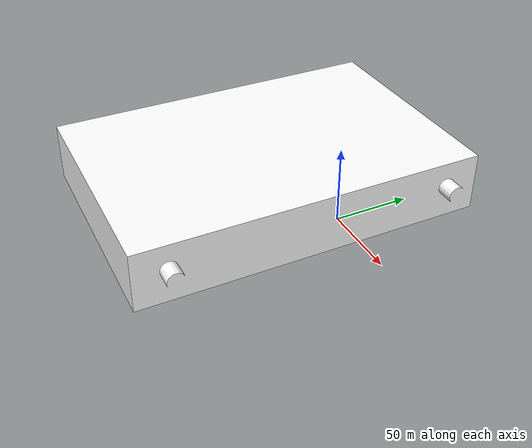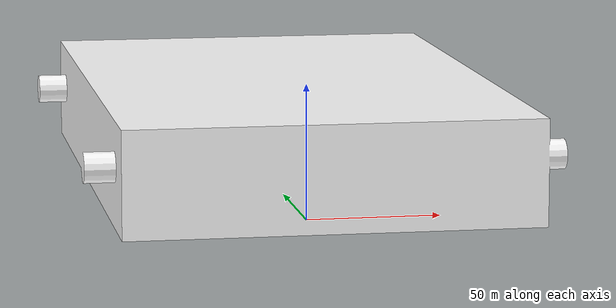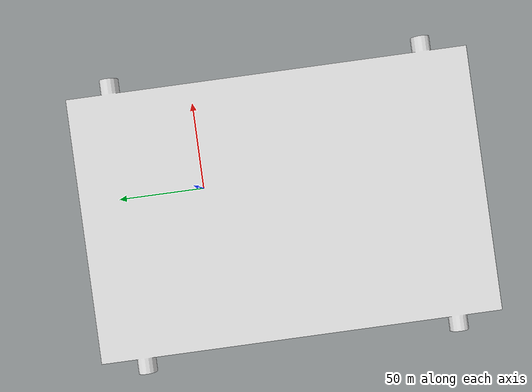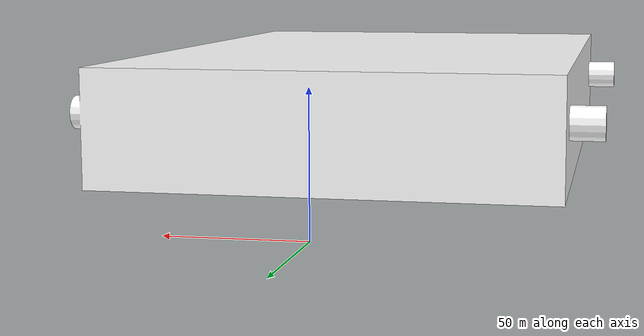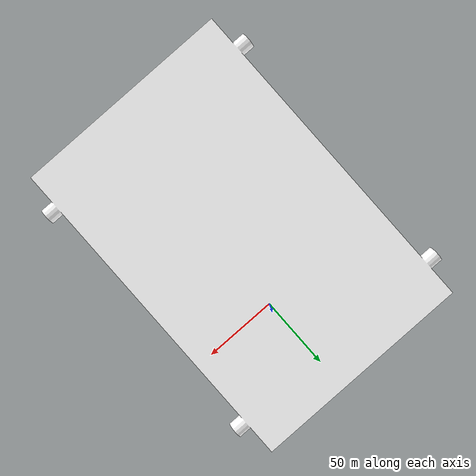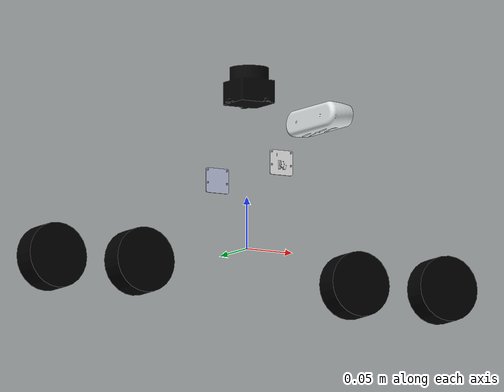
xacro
<?xml version="1.0"?>

<robot name="vehiculo_urdf_v2" xmlns:xacro="http://www.ros.org/wiki/xacro">
    <xacro:arg name="ground_truth_on" default="true" />

    <xacro:include filename="$(find vehicle_description)/urdf/vehiculo_urdf_v2.urdf" />
    <xacro:include filename="$(find vehicle_description)/urdf/vehiculo_macros.xacro" />
    <xacro:include filename="$(find vehicle_description)/urdf/vehiculo_gazebo.xacro" />
    <xacro:vehicle_sensors ground_truth_on="$(arg ground_truth_on)" />

    <!-- Degree-to-radian conversions -->
    <xacro:property name="degrees_45" value="0.785398163" />
    <xacro:property name="degrees_90" value="1.57079633" />

    <!-- chassis_length is measured along the x axis, chassis_width
       along the y axis, and
    chassis_height along the z axis. -->
    <xacro:property name="chassis_length" value="0.23208" />
    <xacro:property name="chassis_width" value="0.17" />
    <xacro:property name="chassis_height" value="0.17925" />
    <xacro:property name="chassis_mass" value="0.65815" />

    <link name="base_footprint"> </link>

    <gazebo reference="base_footprint">
        <material>Gazebo/Grey</material>
    </gazebo>

    <joint name="base_footprint_to_base_link" type="fixed">
        <parent link="base_footprint" />
        <child link="base_link" />
    </joint>

    <!-- Wheels -->
    <xacro:front_wheel lr_prefix="left" fr_prefix="front"
        lr_reflect="1" fr_reflect="1" />
    <xacro:front_wheel lr_prefix="right" fr_prefix="front"
        lr_reflect="-1" fr_reflect="1" />
    <xacro:rear_wheel lr_prefix="left" fr_prefix="rear"
        lr_reflect="1" fr_reflect="-1" />
    <xacro:rear_wheel lr_prefix="right" fr_prefix="rear"
        lr_reflect="-1" fr_reflect="-1" />

    <gazebo>
        <plugin name="gazebo_ros_control" filename="libgazebo_ros_control.so">
            <robotNamespace>/</robotNamespace>
        </plugin>
    </gazebo>

</robot>

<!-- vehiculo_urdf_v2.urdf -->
<robot
  name="vehiculo_urdf_v2">
  <link
    name="base_link">
    <inertial>
      <origin
        xyz="-0.0012936 -0.0013074 0.052855"
        rpy="0 0 0" />
      <mass
        value="0.65815" />
      <inertia
        ixx="0.0006861"
        ixy="-2.0593E-06"
        ixz="5.8448E-06"
        iyy="0.0016384"
        iyz="1.37E-08"
        izz="0.0021405" />
    </inertial>
    <visual>
      <origin
        xyz="0 0 0"
        rpy="0 0 0" />
      <geometry>
        <mesh
          filename="package://vehicle_description/meshes/base_link.STL" />
      </geometry>
      <material
        name="">
        <color
          rgba="1 1 1 1" />
      </material>
    </visual>
    <collision>
      <origin
        xyz="0 0 0"
        rpy="0 0 0" />
      <geometry>
        <mesh
          filename="package://vehicle_description/meshes/base_link.STL" />
      </geometry>
    </collision>
  </link>

  <link
    name="link_lidar">
    <inertial>
      <origin
        xyz="-1.3261E-05 0 -0.01853"
        rpy="0 0 0" />
      <mass
        value="0.064116" />
      <inertia
        ixx="1.3258E-05"
        ixy="4.4109E-22"
        ixz="-1.2789E-08"
        iyy="1.3212E-05"
        iyz="-2.5949E-22"
        izz="1.3761E-05" />
    </inertial>
    <visual>
      <origin
        xyz="0 0 0"
        rpy="0 0 0" />
      <geometry>
        <mesh
          filename="package://vehicle_description/meshes/link_lidar.STL" />
      </geometry>
      <material
        name="">
        <color
          rgba="0.019608 0.019608 0.019608 1" />
      </material>
    </visual>
    <collision>
      <origin
        xyz="0 0 0"
        rpy="0 0 0" />
      <geometry>
        <mesh
          filename="package://vehicle_description/meshes/link_lidar.STL" />
      </geometry>
    </collision>
  </link>

  <link
    name="link_realsense">
    <inertial>
      <origin
        xyz="-0.01273 -2.7327E-07 -4.8132E-05"
        rpy="0 0 0" />
      <mass
        value="0.048199" />
      <inertia
        ixx="2.7389E-05"
        ixy="-4.2604E-07"
        ixz="7.5461E-09"
        iyy="3.3505E-06"
        iyz="2.2352E-09"
        izz="2.665E-05" />
    </inertial>
    <visual>
      <origin
        xyz="0 0 0"
        rpy="0 0 0" />
      <geometry>
        <mesh
          filename="package://vehicle_description/meshes/link_realsense.STL" />
      </geometry>
      <material
        name="">
        <color
          rgba="0.89804 0.92157 0.92941 1" />
      </material>
    </visual>
    <collision>
      <origin
        xyz="0 0 0"
        rpy="0 0 0" />
      <geometry>
        <mesh
          filename="package://vehicle_description/meshes/link_realsense.STL" />
      </geometry>
    </collision>
  </link>

  <link name="camera_depth_link"></link>

  <link
    name="link_camera_left">
    <inertial>
      <origin
        xyz="6.5635E-05 -0.0048087 0.0021608"
        rpy="0 0 0" />
      <mass
        value="0.0067428" />
      <inertia
        ixx="2.7218E-07"
        ixy="-2.4896E-10"
        ixz="-3.357E-09"
        iyy="4.9747E-07"
        iyz="8.1629E-09"
        izz="2.5635E-07" />
    </inertial>
    <visual>
      <origin
        xyz="0 0 0"
        rpy="0 0 -1.57" />
      <geometry>
        <mesh
          filename="package://vehicle_description/meshes/link_camera_left.STL" />
      </geometry>
      <material
        name="">
        <color
          rgba="0.79216 0.81961 0.93333 1" />
      </material>
    </visual>
    <collision>
      <origin
        xyz="0 0 0"
        rpy="0 0 0" />
      <geometry>
        <mesh
          filename="package://vehicle_description/meshes/link_camera_left.STL" />
      </geometry>
    </collision>
  </link>

  <link
    name="link_camera_right">
    <inertial>
      <origin
        xyz="0 0 0"
        rpy="0 0 0" />
      <mass
        value="0.0067428" />
      <inertia
        ixx="0"
        ixy="0"
        ixz="0"
        iyy="0"
        iyz="0"
        izz="0" />
    </inertial>
    <visual>
      <origin
        xyz="0 0 0"
        rpy="0 0 1.57" />
      <geometry>
        <mesh
          filename="package://vehicle_description/meshes/link_camera_right.STL" />
      </geometry>
      <material
        name="">
        <color
          rgba="1 1 1 1" />
      </material>
    </visual>
    <collision>
      <origin
        xyz="0 0 0"
        rpy="0 0 0" />
      <geometry>
        <mesh
          filename="package://vehicle_description/meshes/link_camera_right.STL" />
      </geometry>
    </collision>
  </link>

  <!-- Define Joints -->
  <joint
    name="joint_lidar"
    type="fixed">
    <origin
      xyz="0.0011194 -0.0018421 0.17525"
      rpy="0 0 0" />
    <parent
      link="base_link" />
    <child
      link="link_lidar" />
    <axis
      xyz="0 0 0" />
  </joint>

  <joint name="camera_depth_joint"
    type="fixed">
    <origin xyz="0 0 0" rpy="-1.57 0 -1.57" />
    <parent link="link_realsense" />
    <child link="camera_depth_link" />
  </joint>

  <joint
    name="joint_realsense"
    type="fixed">
    <origin
      xyz="0.091198 -0.0025328 0.13167"
      rpy="0 0 0" />
    <parent
      link="base_link" />
    <child
      link="link_realsense" />
    <axis
      xyz="0 0 0" />
    <limit
      lower="0"
      upper="0"
      effort="0"
      velocity="0" />
  </joint>

  <joint
    name="joint_camera_left"
    type="fixed">
    <origin
      xyz="0.001298 0.064363 0.072198"
      rpy="0 0 1.57" />
    <parent
      link="base_link" />
    <child
      link="link_camera_left" />
    <axis
      xyz="0 0 0" />
  </joint>

  <joint
    name="joint_camera_right"
    type="fixed">
    <origin
      xyz="0.001298 -0.068037 0.072198"
      rpy="0 0 -1.57" />
    <parent
      link="base_link" />
    <child
      link="link_camera_right" />
    <axis
      xyz="0 0 0" />
  </joint>
</robot>

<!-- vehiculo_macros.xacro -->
<robot name="vehiculo_urdf_v2" xmlns:xacro="http://www.ros.org/wiki/xacro">

    <!-- Degree-to-radian conversions -->
    <xacro:property name="degrees_45" value="0.785398163" />
    <xacro:property name="degrees_90" value="1.57079633" />

    <!-- chassis_length is measured along the x axis, chassis_width
     along the y axis, and
    chassis_height along the z axis. -->
    <xacro:property name="chassis_length" value="0.23208" />
    <xacro:property name="chassis_width" value="0.17" />
    <xacro:property name="chassis_height" value="0.17925" />
    <xacro:property name="chassis_mass" value="0.65815" />

    <xacro:property name="hub_dia" value="0.052" />
    <xacro:property name="tire_dia" value="0.063" />
    <xacro:property name="tire_width" value="0.02549" />
    <xacro:property name="hex_hub_depth" value="0.016" />
    <xacro:property name="wheel_mass" value="0.29" />

    <xacro:property name="wheelbase" value="0.335" />
    <xacro:property name="hex_hub_dist" value="0.18810" />
    <xacro:property name="axle_length" value="0.011" />
    <xacro:property name="wheel_travel" value="0.084" />
    <xacro:property name="shock_z_offset" value="0.0655" />

    <xacro:property name="shock_eff_limit" value="12.5106" />
    <xacro:property name="shock_vel_limit" value="1000" />

    <xacro:property name="axle_eff_limit" value="5.12766" />
    <xacro:property name="axle_vel_limit" value="244.8696" />

    <!-- These constants are used to simulate a Traxxas 2056 servo operated at
     6 V.
    servo_stall_torque is measured in N m. servo_no_load_speed is
     measured in rad/s. -->
    <xacro:property name="servo_stall_torque" value="0.5649" />
    <xacro:property name="servo_no_load_speed" value="4.553" />

    <material name="chassis_mat">
        <color rgba="0.5 0.5 0.5 1" />
    </material>
    <material name="tire_mat">
        <color rgba="0 0 0 1" />
    </material>
    <material name="black">
        <color rgba="0 0 0 1" />
    </material>
    <!-- Null inertial element. This is needed to make the model work with
     Gazebo. -->
    <xacro:macro name="null_inertial">
        <inertial>
            <mass value="0.001" />
            <inertia ixx="0.001" ixy="0" ixz="0" iyy="0.001" iyz="0" izz="0.001" />
        </inertial>
    </xacro:macro>

    <!-- Inertia of a solid cuboid. Width is measured along the x axis, depth
     along the y axis,
    and height along the z axis. -->
    <xacro:macro name="solid_cuboid_inertial"
        params="width depth height mass *origin">
        <inertial>
            <xacro:insert_block name="origin" />
            <mass value="${mass}" />
            <inertia ixx="${mass * (depth * depth + height * height) / 12}"
                ixy="0" ixz="0"
                iyy="${mass * (width * width + height * height) / 12}"
                iyz="0"
                izz="${mass * (width * width + depth * depth) / 12}" />
        </inertial>
    </xacro:macro>

    <xacro:macro name="thick_walled_tube_inertial"
        params="inner_rad outer_rad height mass">
        <inertial>
            <mass value="${mass}" />
            <inertia
                ixx="${(1 / 12) * mass * (3 * (inner_rad * inner_rad +
                  outer_rad * outer_rad) + height * height)}"
                ixy="0" ixz="0"
                iyy="${(1 / 12) * mass * (3 * (inner_rad * inner_rad +
                  outer_rad * outer_rad) + height * height)}"
                iyz="0"
                izz="${mass * (inner_rad * inner_rad +
                  outer_rad * outer_rad) / 2}" />
        </inertial>
    </xacro:macro>

    <!-- Shock absorber -->
    <xacro:macro name="shock"
        params="lr_prefix fr_prefix lr_reflect fr_reflect child">
        <joint name="${lr_prefix}_${fr_prefix}_shock" type="prismatic">
            <parent link="base_footprint" />
            <child link="${child}" />

            <origin
                xyz="${fr_reflect * wheelbase / 2}
                 ${lr_reflect * ((hex_hub_dist / 2) - axle_length)}
                 ${(wheel_travel / 2) - shock_z_offset}" />
            <axis xyz="0 0 -1" />
            <limit lower="${-wheel_travel / 2}" upper="${wheel_travel / 2}"
                effort="${shock_eff_limit}" velocity="${shock_vel_limit}" />
        </joint>
        <transmission name="${lr_prefix}_${fr_prefix}_shock_trans">
            <type>transmission_interface/SimpleTransmission</type>
            <joint name="${lr_prefix}_${fr_prefix}_shock">
                <hardwareInterface>hardware_interface/EffortJointInterface</hardwareInterface>
            </joint>
            <actuator name="${lr_prefix}_${fr_prefix}_shock_act">
                <!-- This hardwareInterface element exists for compatibility
           with ROS
                Hydro. -->
                <hardwareInterface>hardware_interface/EffortJointInterface</hardwareInterface>
                <mechanicalReduction>1</mechanicalReduction>
            </actuator>
        </transmission>
    </xacro:macro>

    <!-- The "wheel" macro defines an axle carrier, axle, and wheel. -->
    <xacro:macro name="wheel" params="lr_prefix fr_prefix lr_reflect">
        <link name="${lr_prefix}_${fr_prefix}_axle_carrier">
            <xacro:null_inertial />
        </link>

        <!-- The left and right axles have the same axis so that identical
       rotation values
        cause the wheels to rotate in the same direction. -->
        <joint name="${lr_prefix}_${fr_prefix}_axle" type="continuous">
            <parent link="${lr_prefix}_${fr_prefix}_axle_carrier" />
            <child link="${lr_prefix}_${fr_prefix}_wheel" />
            <origin rpy="${degrees_90} 0 0" />
            <axis xyz="0 0 -1" />
            <limit effort="${axle_eff_limit}" velocity="${axle_vel_limit}" />
        </joint>
        <transmission name="${lr_prefix}_${fr_prefix}_axle_trans">
            <type>transmission_interface/SimpleTransmission</type>
            <joint name="${lr_prefix}_${fr_prefix}_axle">
                <hardwareInterface>hardware_interface/EffortJointInterface</hardwareInterface>
            </joint>
            <actuator name="${lr_prefix}_${fr_prefix}_axle_act">
                <!-- This hardwareInterface element exists for compatibility
           with ROS
                Hydro. -->
                <hardwareInterface>hardware_interface/EffortJointInterface</hardwareInterface>
                <mechanicalReduction>1</mechanicalReduction>
            </actuator>
        </transmission>

        <link name="${lr_prefix}_${fr_prefix}_wheel">
            <visual>
                <origin
                    xyz="0
                   ${lr_reflect * (axle_length - (tire_width /
                   2 - hex_hub_depth))}
                   0" />
                <geometry>
                    <cylinder radius="${tire_dia / 2}" length="${tire_width}" />
                </geometry>
                <material name="tire_mat" />
            </visual>

            <collision>
                <origin
                    xyz="0
                   ${lr_reflect * (axle_length - (tire_width /
                   2 - hex_hub_depth))}
                   0" />
                <geometry>
                    <cylinder radius="${tire_dia / 2}" length="${tire_width}" />
                </geometry>
            </collision>

            <xacro:thick_walled_tube_inertial
                inner_rad="${hub_dia / 2}" outer_rad="${tire_dia / 2}"
                height="${tire_width}" mass="${wheel_mass}" />
        </link>

        <gazebo reference="${lr_prefix}_${fr_prefix}_wheel">
            <material>Gazebo/Black</material>
        </gazebo>
    </xacro:macro>

    <!-- Front wheel -->
    <xacro:macro name="front_wheel"
        params="lr_prefix fr_prefix lr_reflect fr_reflect">
        <xacro:shock lr_prefix="${lr_prefix}" fr_prefix="${fr_prefix}"
            lr_reflect="${lr_reflect}" fr_reflect="${fr_reflect}"
            child="${lr_prefix}_steering_link" />

        <link name="${lr_prefix}_steering_link">
            <xacro:null_inertial />
        </link>

        <joint name="${lr_prefix}_steering_joint" type="revolute">
            <parent link="${lr_prefix}_steering_link" />
            <child link="${lr_prefix}_${fr_prefix}_axle_carrier" />
            <axis xyz="0 0 1" />
            <limit lower="${-degrees_45}" upper="${degrees_45}"
                effort="${servo_stall_torque}" velocity="${servo_no_load_speed}" />
        </joint>
        <transmission name="${lr_prefix}_steering_trans">
            <type>transmission_interface/SimpleTransmission</type>
            <joint name="${lr_prefix}_steering_joint">
                <hardwareInterface>hardware_interface/EffortJointInterface</hardwareInterface>
            </joint>
            <actuator name="${lr_prefix}_steering_act">
                <!-- This hardwareInterface element exists for compatibility
           with ROS
                Hydro. -->
                <hardwareInterface>hardware_interface/EffortJointInterface</hardwareInterface>
                <mechanicalReduction>1</mechanicalReduction>
            </actuator>
        </transmission>

        <xacro:wheel lr_prefix="${lr_prefix}" fr_prefix="${fr_prefix}"
            lr_reflect="${lr_reflect}" />
    </xacro:macro>

    <!-- Rear wheel -->
    <xacro:macro name="rear_wheel"
        params="lr_prefix fr_prefix lr_reflect fr_reflect">
        <xacro:shock lr_prefix="${lr_prefix}" fr_prefix="${fr_prefix}"
            lr_reflect="${lr_reflect}" fr_reflect="${fr_reflect}"
            child="${lr_prefix}_${fr_prefix}_axle_carrier" />
        <xacro:wheel lr_prefix="${lr_prefix}" fr_prefix="${fr_prefix}"
            lr_reflect="${lr_reflect}" />
    </xacro:macro>

</robot>
